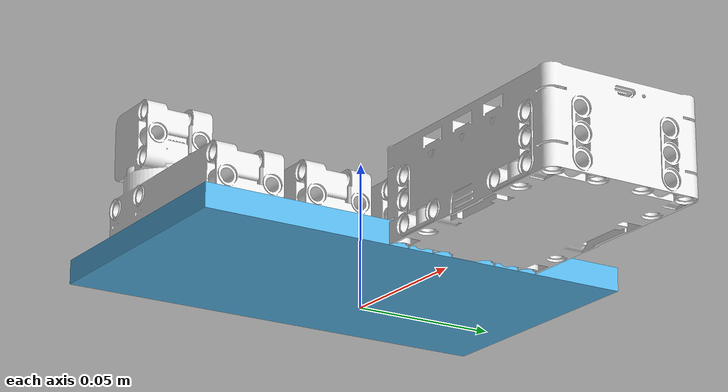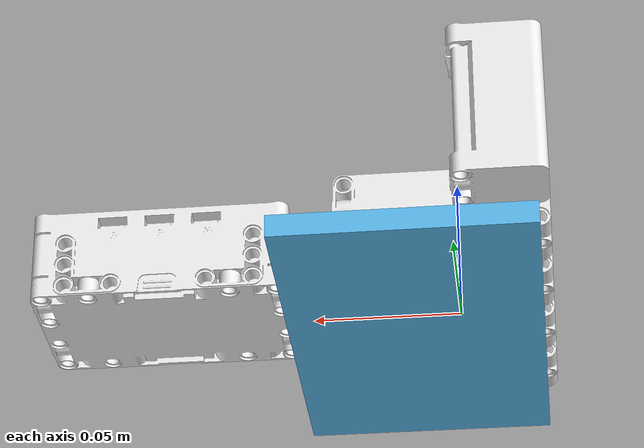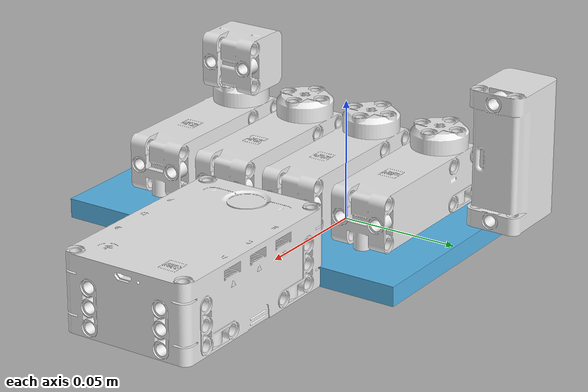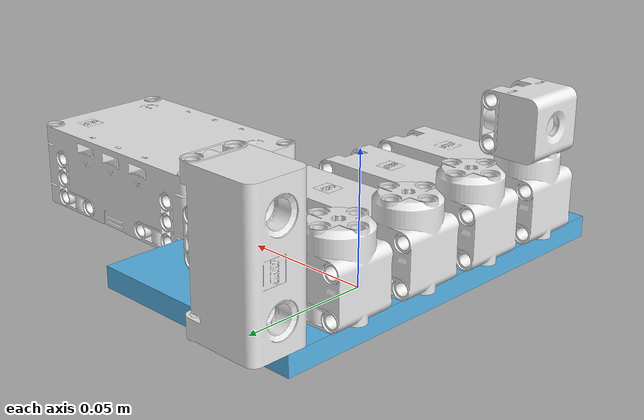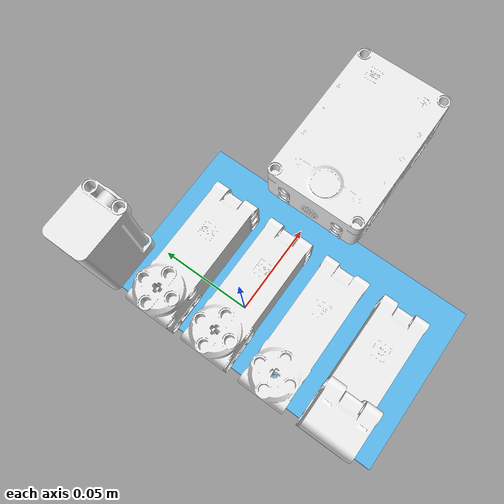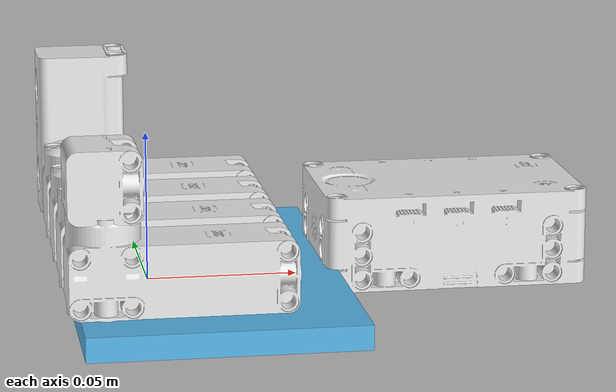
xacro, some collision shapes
<?xml version="1.0" ?>
<robot name="lego_mindstorms" xmlns:xacro="http://wiki.ros.org/xacro">
  <xacro:include filename="$(find lego_spike_description)/urdf/lego_hub.urdf.xacro" />
  <xacro:include filename="$(find lego_spike_description)/urdf/lego_base_plate.urdf.xacro" />
  <xacro:include filename="$(find lego_spike_description)/urdf/lego_small_motor.urdf.xacro" />
  <xacro:include filename="$(find lego_spike_description)/urdf/lego_distance_sensor.urdf.xacro" />
  <xacro:include filename="$(find lego_spike_description)/urdf/lego_color_sensor.urdf.xacro" />

  <link name="base_link" />

  <xacro:lego_base_plate name="base_plate" parent="base_link">
    <origin xyz="0.016 -0.016 0" rpy="0 0 1.57079" />
  </xacro:lego_base_plate>

  <xacro:lego_hub name="lego_hub" parent="base_link">
    <origin xyz="0.1 0 0" rpy="0 0 0" />
  </xacro:lego_hub>

  <xacro:lego_small_motor port="a" parent="base_link">
    <origin xyz="0 0.032 0.008" rpy="0 0 3.14150" />
  </xacro:lego_small_motor>
  <xacro:lego_small_motor port="b" parent="base_link">
    <origin xyz="0 -0.064 0.008" rpy="0 0 3.14150" />
  </xacro:lego_small_motor>
  <xacro:lego_small_motor port="c" parent="base_link">
    <origin xyz="0 0 0.008" rpy="0 0 3.14150" />
  </xacro:lego_small_motor>
  <xacro:lego_small_motor port="d" parent="base_link">
    <origin xyz="0 -0.032 0.008" rpy="0 0 3.14150" />
  </xacro:lego_small_motor>

  <xacro:lego_distance_sensor port="e" parent="base_link">
    <origin xyz="-0.016 0.054 0.038" rpy="1.57079 0 3.14150" />
  </xacro:lego_distance_sensor>

  <xacro:lego_color_sensor port="f" parent="motor_b_wheel_link">
    <origin xyz="0 0 0" rpy="0 0 0" />
  </xacro:lego_color_sensor>
</robot>

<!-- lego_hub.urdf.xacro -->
<robot xmlns:xacro="http://wiki.ros.org/xacro">
  <xacro:include filename="$(find lego_spike_description)/urdf/lego_dimensions.urdf.xacro" />

  <xacro:macro name="lego_hub" params="name parent *origin">
    <link name="${name}_link">
      <visual>
        <geometry>
          <mesh filename="package://lego_spike_description/meshes/SpikePrimeHub.stl" scale="0.0004 0.0004 0.0004"/>
        </geometry>
        <material name="lego_white" />
        <origin xyz="0.004 00.004 0" rpy="1.5707963267948966 0 -1.5707963267948966" />
      </visual>
      <collision>
        <geometry>
          <box size="0.088 0.056 0.032" />
        </geometry>
        <origin xyz="0 0 0.016" rpy="0 0 0" />
      </collision>
    </link>
    <joint name="${name}_joint" type="fixed">
      <parent link="${parent}" />
      <child link="${name}_link" />
      <xacro:insert_block name="origin" />
    </joint>

    <link name="${name}_imu_link" />
    <joint name="${name}_imu_joint" type="fixed">
      <parent link="${name}_link" />
      <child link="${name}_imu_link" />
      <!-- TODO: exact IMU position -->
      <origin xyz="0 0 0" rpy="0 0 1.57079" />
    </joint>
  </xacro:macro>
</robot>

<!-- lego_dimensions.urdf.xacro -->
<robot xmlns:xacro="http://wiki.ros.org/xacro">
  <xacro:property name="pi" value="3.141592653589793"/>

  <xacro:property name="lego_stud_spacing"     value="0.0080"/> <!-- center-to-center -->
  <xacro:property name="lego_brick_height"     value="0.0096"/> <!-- excludes stud -->
  <xacro:property name="lego_brick_width"      value="0.0078"/> <!-- 1x1 brick side length -->
  <xacro:property name="lego_plate_height"     value="0.0032"/> <!-- excludes stud -->
  <xacro:property name="lego_stud_height"      value="0.0017"/>
</robot>

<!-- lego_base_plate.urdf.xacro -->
<robot xmlns:xacro="http://wiki.ros.org/xacro">
  <xacro:include filename="$(find lego_spike_description)/urdf/lego_dimensions.urdf.xacro" />

  <!--
    The 11x19 hole lego technic plate included in Lego Mindstorms 51515
    Model is centered on the middle with the long dimension along the X axis
  -->
  <xacro:macro name="lego_base_plate" params="name parent *origin">
    <link name="${name}_link">
      <visual>
        <geometry>
          <mesh filename="package://lego_spike_description/meshes/SpikePrimeBasePlate.stl" scale="0.0004 0.0004 0.0004"/>
        </geometry>
        <material name="lego_teal" />
        <origin xyz="-${lego_stud_spacing*1.5} -${lego_stud_spacing/2} 0" rpy="1.5707963267948966 0 -1.5707963267948966" />
      </visual>
      <collision>
        <geometry>
          <box size="${lego_stud_spacing * 19} ${lego_stud_spacing * 11} ${lego_stud_spacing}" />
        </geometry>
        <origin xyz="0 0 ${lego_brick_width/2}" rpy="0 0 0" />
      </collision>
    </link>
    <joint name="${name}_joint" type="fixed">
      <parent link="${parent}" />
      <child link="${name}_link" />
      <xacro:insert_block name="origin" />
    </joint>

    <link name="${name}_top_link" />
    <joint name="${name}_top_joint" type="fixed">
      <parent link="${name}_link" />
      <child link="${name}_top_link" />
      <!-- Height is the width of a standard brick, not the height of a brick! -->
      <origin xyz="0 0 ${lego_brick_width}" rpy="0 0 0" />
    </joint>
  </xacro:macro>
</robot>

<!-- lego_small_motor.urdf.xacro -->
<robot xmlns:xacro="http://wiki.ros.org/xacro">
  <xacro:macro name="lego_small_motor" params="port parent *origin">
    <link name="motor_${port}_link">
      <visual>
        <geometry>
          <mesh filename="package://lego_spike_description/meshes/SpikePrimeSmallMotor.stl" scale="0.0004 0.0004 0.0004"/>
        </geometry>
        <material name="lego_white" />
        <origin xyz="0 0.005 0" rpy="1.5707963267948966 0 1.5707963267948966" />
      </visual>
      <!-- TODO: collision -->
    </link>
    <joint name="motor_${port}_joint" type="fixed">
      <parent link="${parent}" />
      <child link="motor_${port}_link" />
      <xacro:insert_block name="origin" />
    </joint>

    <link name="motor_${port}_wheel_link" />
    <joint name="motor_${port}_wheel_joint" type="continuous">
      <parent link="motor_${port}_link" />
      <child link="motor_${port}_wheel_link" />
      <origin xyz="0.02 0 0.03" rpy="0 0 0" />
      <axis xyz="0 0 1" />
    </joint>
  </xacro:macro>
</robot>

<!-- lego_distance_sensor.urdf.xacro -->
<robot xmlns:xacro="http://wiki.ros.org/xacro">
  <xacro:macro name="lego_distance_sensor" params="port parent *origin">
    <link name="distance_${port}_link">
      <visual>
        <geometry>
          <mesh filename="package://lego_spike_description/meshes/SpikePrimeDistanceSensor.stl" scale="0.0004 0.0004 0.0004"/>
        </geometry>
        <material name="lego_white" />
        <origin xyz="0 0 0" rpy="1.5707963267948966 0 1.5707963267948966" />
      </visual>
      <!-- TODO: collision -->
    </link>
    <joint name="distance_${port}_joint" type="fixed">
      <parent link="${parent}" />
      <child link="distance_${port}_link" />
      <xacro:insert_block name="origin" />
    </joint>
  </xacro:macro>
</robot>

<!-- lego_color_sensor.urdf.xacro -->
<robot xmlns:xacro="http://wiki.ros.org/xacro">
  <xacro:macro name="lego_color_sensor" params="port parent *origin">
    <link name="color_${port}_link">
      <visual>
        <geometry>
          <mesh filename="package://lego_spike_description/meshes/SpikePrimeColorSensor.stl" scale="0.0004 0.0004 0.0004"/>
        </geometry>
        <material name="lego_white" />
        <origin xyz="0 0 0" rpy="1.5707963267948966 0 1.5707963267948966" />
      </visual>
      <!-- TODO: collision -->
    </link>
    <joint name="color_${port}_joint" type="fixed">
      <parent link="${parent}" />
      <child link="color_${port}_link" />
      <xacro:insert_block name="origin" />
    </joint>
  </xacro:macro>
</robot>
